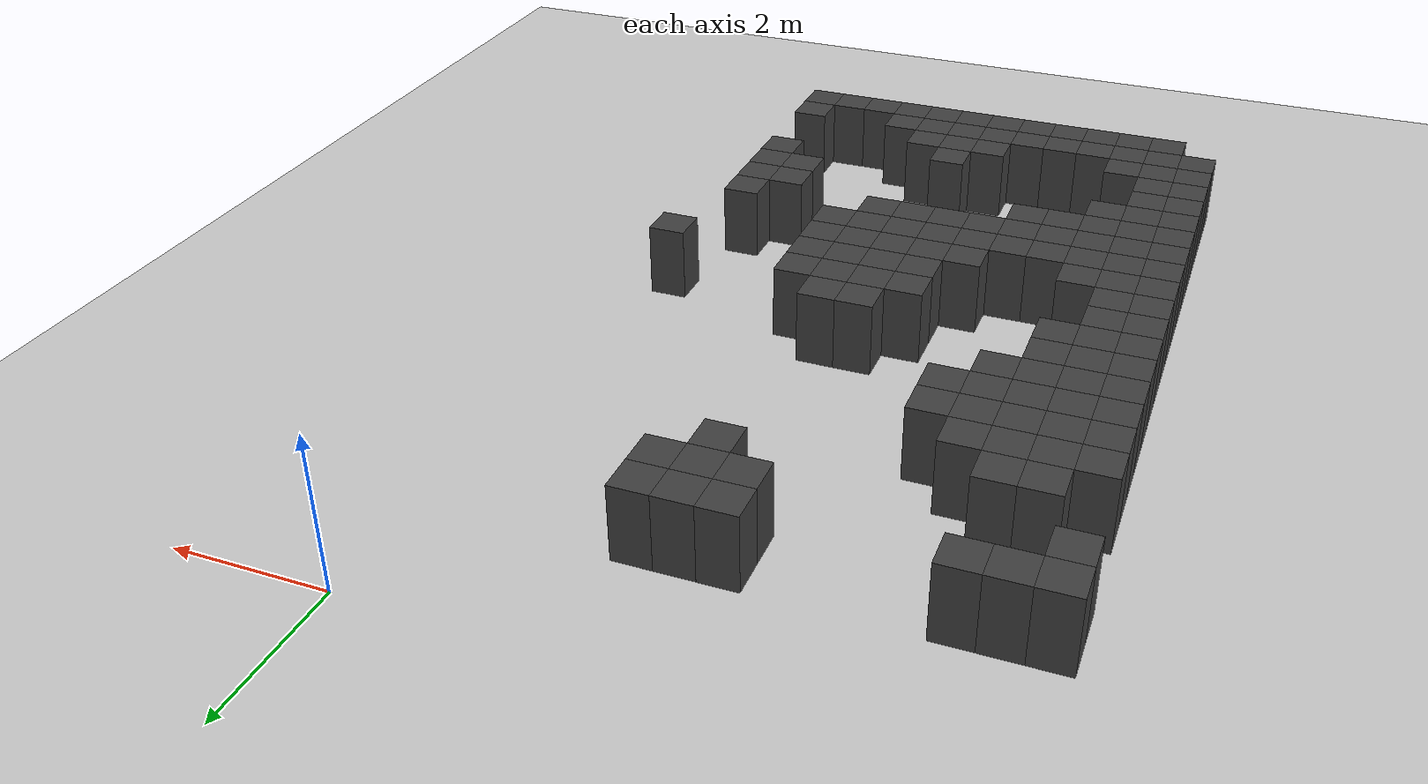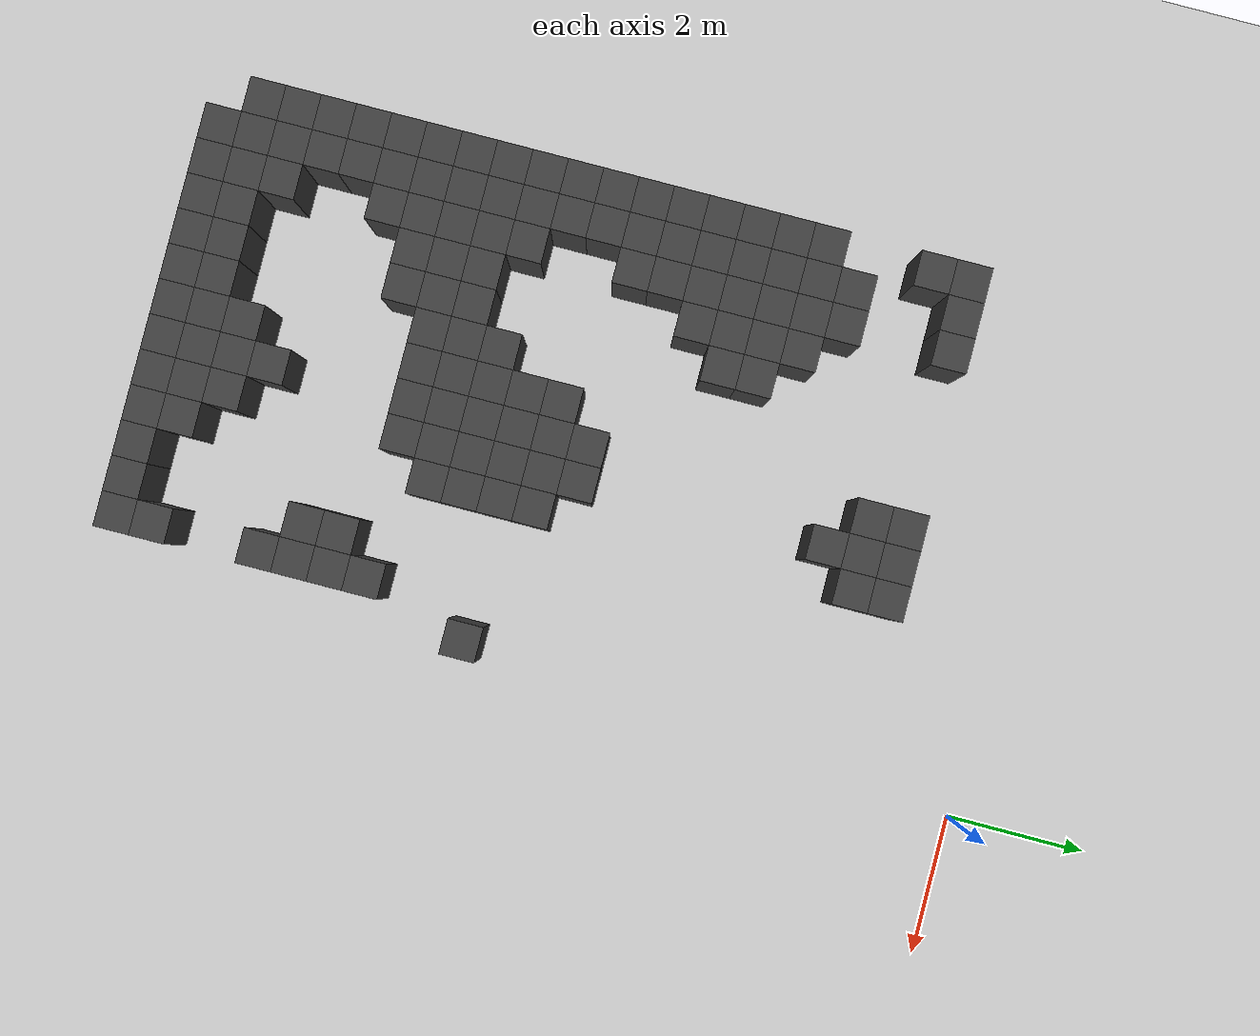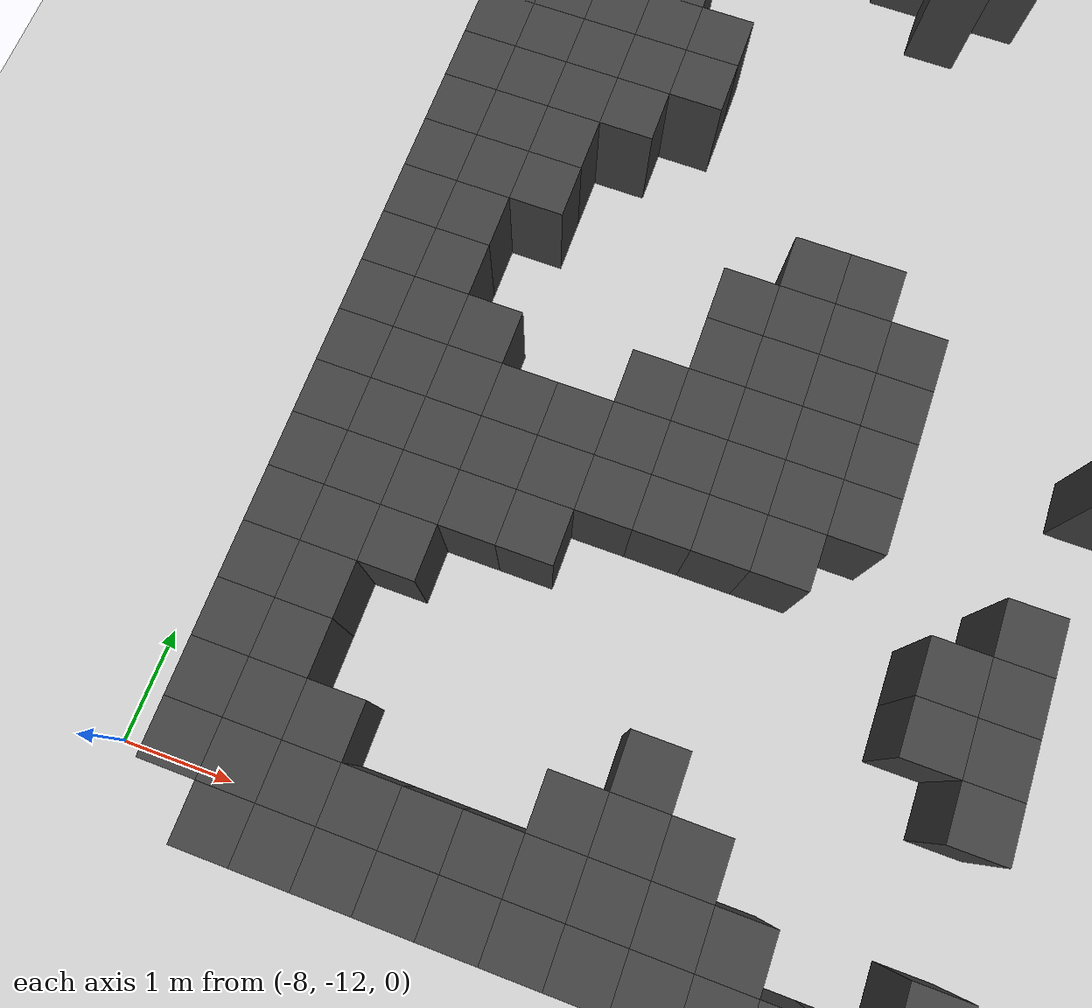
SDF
<sdf version="1.7">
 <world name="map_9713">
  <model name="ground_plane">
   <static>true</static>
   <link name="link">
    <collision name="collision">
     <geometry><plane><normal>0 0 1</normal><size>200 200</size></plane></geometry>
    </collision>
    <visual name="visual">
     <geometry><plane><normal>0 0 1</normal><size>200 200</size></plane></geometry>
     <material><ambient>0.8 0.8 0.8 1</ambient><diffuse>0.8 0.8 0.8 1</diffuse></material>
    </visual>
   </link>
  </model>
  <model name="maze_environment">
   <static>true</static>
   <link name="wall_519">
    <pose>-7.250 -1.750 0.500 0 0 0</pose>
    <collision name="col"><geometry><box><size>0.5 0.5 1.0</size></box></geometry></collision>
    <visual name="vis">
     <geometry><box><size>0.5 0.5 1.0</size></box></geometry>
     <material><ambient>0.15 0.15 0.15 1</ambient><diffuse>0.25 0.25 0.25 1</diffuse></material>
    </visual>
   </link>
   <link name="wall_520">
    <pose>-6.750 -1.750 0.500 0 0 0</pose>
    <collision name="col"><geometry><box><size>0.5 0.5 1.0</size></box></geometry></collision>
    <visual name="vis">
     <geometry><box><size>0.5 0.5 1.0</size></box></geometry>
     <material><ambient>0.15 0.15 0.15 1</ambient><diffuse>0.25 0.25 0.25 1</diffuse></material>
    </visual>
   </link>
   <link name="wall_521">
    <pose>-6.250 -1.750 0.500 0 0 0</pose>
    <collision name="col"><geometry><box><size>0.5 0.5 1.0</size></box></geometry></collision>
    <visual name="vis">
     <geometry><box><size>0.5 0.5 1.0</size></box></geometry>
     <material><ambient>0.15 0.15 0.15 1</ambient><diffuse>0.25 0.25 0.25 1</diffuse></material>
    </visual>
   </link>
   <link name="wall_522">
    <pose>-3.750 -1.750 0.500 0 0 0</pose>
    <collision name="col"><geometry><box><size>0.5 0.5 1.0</size></box></geometry></collision>
    <visual name="vis">
     <geometry><box><size>0.5 0.5 1.0</size></box></geometry>
     <material><ambient>0.15 0.15 0.15 1</ambient><diffuse>0.25 0.25 0.25 1</diffuse></material>
    </visual>
   </link>
   <link name="wall_523">
    <pose>-3.250 -1.750 0.500 0 0 0</pose>
    <collision name="col"><geometry><box><size>0.5 0.5 1.0</size></box></geometry></collision>
    <visual name="vis">
     <geometry><box><size>0.5 0.5 1.0</size></box></geometry>
     <material><ambient>0.15 0.15 0.15 1</ambient><diffuse>0.25 0.25 0.25 1</diffuse></material>
    </visual>
   </link>
   <link name="wall_524">
    <pose>-2.750 -1.750 0.500 0 0 0</pose>
    <collision name="col"><geometry><box><size>0.5 0.5 1.0</size></box></geometry></collision>
    <visual name="vis">
     <geometry><box><size>0.5 0.5 1.0</size></box></geometry>
     <material><ambient>0.15 0.15 0.15 1</ambient><diffuse>0.25 0.25 0.25 1</diffuse></material>
    </visual>
   </link>
   <link name="wall_540">
    <pose>-7.250 -2.250 0.500 0 0 0</pose>
    <collision name="col"><geometry><box><size>0.5 0.5 1.0</size></box></geometry></collision>
    <visual name="vis">
     <geometry><box><size>0.5 0.5 1.0</size></box></geometry>
     <material><ambient>0.15 0.15 0.15 1</ambient><diffuse>0.25 0.25 0.25 1</diffuse></material>
    </visual>
   </link>
   <link name="wall_541">
    <pose>-3.750 -2.250 0.500 0 0 0</pose>
    <collision name="col"><geometry><box><size>0.5 0.5 1.0</size></box></geometry></collision>
    <visual name="vis">
     <geometry><box><size>0.5 0.5 1.0</size></box></geometry>
     <material><ambient>0.15 0.15 0.15 1</ambient><diffuse>0.25 0.25 0.25 1</diffuse></material>
    </visual>
   </link>
   <link name="wall_542">
    <pose>-3.250 -2.250 0.500 0 0 0</pose>
    <collision name="col"><geometry><box><size>0.5 0.5 1.0</size></box></geometry></collision>
    <visual name="vis">
     <geometry><box><size>0.5 0.5 1.0</size></box></geometry>
     <material><ambient>0.15 0.15 0.15 1</ambient><diffuse>0.25 0.25 0.25 1</diffuse></material>
    </visual>
   </link>
   <link name="wall_543">
    <pose>-2.750 -2.250 0.500 0 0 0</pose>
    <collision name="col"><geometry><box><size>0.5 0.5 1.0</size></box></geometry></collision>
    <visual name="vis">
     <geometry><box><size>0.5 0.5 1.0</size></box></geometry>
     <material><ambient>0.15 0.15 0.15 1</ambient><diffuse>0.25 0.25 0.25 1</diffuse></material>
    </visual>
   </link>
   <link name="wall_561">
    <pose>-3.250 -2.750 0.500 0 0 0</pose>
    <collision name="col"><geometry><box><size>0.5 0.5 1.0</size></box></geometry></collision>
    <visual name="vis">
     <geometry><box><size>0.5 0.5 1.0</size></box></geometry>
     <material><ambient>0.15 0.15 0.15 1</ambient><diffuse>0.25 0.25 0.25 1</diffuse></material>
    </visual>
   </link>
   <link name="wall_583">
    <pose>-6.750 -3.250 0.500 0 0 0</pose>
    <collision name="col"><geometry><box><size>0.5 0.5 1.0</size></box></geometry></collision>
    <visual name="vis">
     <geometry><box><size>0.5 0.5 1.0</size></box></geometry>
     <material><ambient>0.15 0.15 0.15 1</ambient><diffuse>0.25 0.25 0.25 1</diffuse></material>
    </visual>
   </link>
   <link name="wall_584">
    <pose>-6.250 -3.250 0.500 0 0 0</pose>
    <collision name="col"><geometry><box><size>0.5 0.5 1.0</size></box></geometry></collision>
    <visual name="vis">
     <geometry><box><size>0.5 0.5 1.0</size></box></geometry>
     <material><ambient>0.15 0.15 0.15 1</ambient><diffuse>0.25 0.25 0.25 1</diffuse></material>
    </visual>
   </link>
   <link name="wall_605">
    <pose>-7.250 -3.750 0.500 0 0 0</pose>
    <collision name="col"><geometry><box><size>0.5 0.5 1.0</size></box></geometry></collision>
    <visual name="vis">
     <geometry><box><size>0.5 0.5 1.0</size></box></geometry>
     <material><ambient>0.15 0.15 0.15 1</ambient><diffuse>0.25 0.25 0.25 1</diffuse></material>
    </visual>
   </link>
   <link name="wall_606">
    <pose>-6.750 -3.750 0.500 0 0 0</pose>
    <collision name="col"><geometry><box><size>0.5 0.5 1.0</size></box></geometry></collision>
    <visual name="vis">
     <geometry><box><size>0.5 0.5 1.0</size></box></geometry>
     <material><ambient>0.15 0.15 0.15 1</ambient><diffuse>0.25 0.25 0.25 1</diffuse></material>
    </visual>
   </link>
   <link name="wall_607">
    <pose>-6.250 -3.750 0.500 0 0 0</pose>
    <collision name="col"><geometry><box><size>0.5 0.5 1.0</size></box></geometry></collision>
    <visual name="vis">
     <geometry><box><size>0.5 0.5 1.0</size></box></geometry>
     <material><ambient>0.15 0.15 0.15 1</ambient><diffuse>0.25 0.25 0.25 1</diffuse></material>
    </visual>
   </link>
   <link name="wall_608">
    <pose>-5.750 -3.750 0.500 0 0 0</pose>
    <collision name="col"><geometry><box><size>0.5 0.5 1.0</size></box></geometry></collision>
    <visual name="vis">
     <geometry><box><size>0.5 0.5 1.0</size></box></geometry>
     <material><ambient>0.15 0.15 0.15 1</ambient><diffuse>0.25 0.25 0.25 1</diffuse></material>
    </visual>
   </link>
   <link name="wall_625">
    <pose>-7.250 -4.250 0.500 0 0 0</pose>
    <collision name="col"><geometry><box><size>0.5 0.5 1.0</size></box></geometry></collision>
    <visual name="vis">
     <geometry><box><size>0.5 0.5 1.0</size></box></geometry>
     <material><ambient>0.15 0.15 0.15 1</ambient><diffuse>0.25 0.25 0.25 1</diffuse></material>
    </visual>
   </link>
   <link name="wall_626">
    <pose>-6.750 -4.250 0.500 0 0 0</pose>
    <collision name="col"><geometry><box><size>0.5 0.5 1.0</size></box></geometry></collision>
    <visual name="vis">
     <geometry><box><size>0.5 0.5 1.0</size></box></geometry>
     <material><ambient>0.15 0.15 0.15 1</ambient><diffuse>0.25 0.25 0.25 1</diffuse></material>
    </visual>
   </link>
   <link name="wall_627">
    <pose>-6.250 -4.250 0.500 0 0 0</pose>
    <collision name="col"><geometry><box><size>0.5 0.5 1.0</size></box></geometry></collision>
    <visual name="vis">
     <geometry><box><size>0.5 0.5 1.0</size></box></geometry>
     <material><ambient>0.15 0.15 0.15 1</ambient><diffuse>0.25 0.25 0.25 1</diffuse></material>
    </visual>
   </link>
   <link name="wall_628">
    <pose>-5.750 -4.250 0.500 0 0 0</pose>
    <collision name="col"><geometry><box><size>0.5 0.5 1.0</size></box></geometry></collision>
    <visual name="vis">
     <geometry><box><size>0.5 0.5 1.0</size></box></geometry>
     <material><ambient>0.15 0.15 0.15 1</ambient><diffuse>0.25 0.25 0.25 1</diffuse></material>
    </visual>
   </link>
   <link name="wall_629">
    <pose>-5.250 -4.250 0.500 0 0 0</pose>
    <collision name="col"><geometry><box><size>0.5 0.5 1.0</size></box></geometry></collision>
    <visual name="vis">
     <geometry><box><size>0.5 0.5 1.0</size></box></geometry>
     <material><ambient>0.15 0.15 0.15 1</ambient><diffuse>0.25 0.25 0.25 1</diffuse></material>
    </visual>
   </link>
   <link name="wall_641">
    <pose>-7.250 -4.750 0.500 0 0 0</pose>
    <collision name="col"><geometry><box><size>0.5 0.5 1.0</size></box></geometry></collision>
    <visual name="vis">
     <geometry><box><size>0.5 0.5 1.0</size></box></geometry>
     <material><ambient>0.15 0.15 0.15 1</ambient><diffuse>0.25 0.25 0.25 1</diffuse></material>
    </visual>
   </link>
   <link name="wall_642">
    <pose>-6.750 -4.750 0.500 0 0 0</pose>
    <collision name="col"><geometry><box><size>0.5 0.5 1.0</size></box></geometry></collision>
    <visual name="vis">
     <geometry><box><size>0.5 0.5 1.0</size></box></geometry>
     <material><ambient>0.15 0.15 0.15 1</ambient><diffuse>0.25 0.25 0.25 1</diffuse></material>
    </visual>
   </link>
   <link name="wall_643">
    <pose>-6.250 -4.750 0.500 0 0 0</pose>
    <collision name="col"><geometry><box><size>0.5 0.5 1.0</size></box></geometry></collision>
    <visual name="vis">
     <geometry><box><size>0.5 0.5 1.0</size></box></geometry>
     <material><ambient>0.15 0.15 0.15 1</ambient><diffuse>0.25 0.25 0.25 1</diffuse></material>
    </visual>
   </link>
   <link name="wall_644">
    <pose>-5.750 -4.750 0.500 0 0 0</pose>
    <collision name="col"><geometry><box><size>0.5 0.5 1.0</size></box></geometry></collision>
    <visual name="vis">
     <geometry><box><size>0.5 0.5 1.0</size></box></geometry>
     <material><ambient>0.15 0.15 0.15 1</ambient><diffuse>0.25 0.25 0.25 1</diffuse></material>
    </visual>
   </link>
   <link name="wall_645">
    <pose>-5.250 -4.750 0.500 0 0 0</pose>
    <collision name="col"><geometry><box><size>0.5 0.5 1.0</size></box></geometry></collision>
    <visual name="vis">
     <geometry><box><size>0.5 0.5 1.0</size></box></geometry>
     <material><ambient>0.15 0.15 0.15 1</ambient><diffuse>0.25 0.25 0.25 1</diffuse></material>
    </visual>
   </link>
   <link name="wall_656">
    <pose>-7.250 -5.250 0.500 0 0 0</pose>
    <collision name="col"><geometry><box><size>0.5 0.5 1.0</size></box></geometry></collision>
    <visual name="vis">
     <geometry><box><size>0.5 0.5 1.0</size></box></geometry>
     <material><ambient>0.15 0.15 0.15 1</ambient><diffuse>0.25 0.25 0.25 1</diffuse></material>
    </visual>
   </link>
   <link name="wall_657">
    <pose>-6.750 -5.250 0.500 0 0 0</pose>
    <collision name="col"><geometry><box><size>0.5 0.5 1.0</size></box></geometry></collision>
    <visual name="vis">
     <geometry><box><size>0.5 0.5 1.0</size></box></geometry>
     <material><ambient>0.15 0.15 0.15 1</ambient><diffuse>0.25 0.25 0.25 1</diffuse></material>
    </visual>
   </link>
   <link name="wall_658">
    <pose>-6.250 -5.250 0.500 0 0 0</pose>
    <collision name="col"><geometry><box><size>0.5 0.5 1.0</size></box></geometry></collision>
    <visual name="vis">
     <geometry><box><size>0.5 0.5 1.0</size></box></geometry>
     <material><ambient>0.15 0.15 0.15 1</ambient><diffuse>0.25 0.25 0.25 1</diffuse></material>
    </visual>
   </link>
   <link name="wall_659">
    <pose>-5.750 -5.250 0.500 0 0 0</pose>
    <collision name="col"><geometry><box><size>0.5 0.5 1.0</size></box></geometry></collision>
    <visual name="vis">
     <geometry><box><size>0.5 0.5 1.0</size></box></geometry>
     <material><ambient>0.15 0.15 0.15 1</ambient><diffuse>0.25 0.25 0.25 1</diffuse></material>
    </visual>
   </link>
   <link name="wall_672">
    <pose>-7.250 -5.750 0.500 0 0 0</pose>
    <collision name="col"><geometry><box><size>0.5 0.5 1.0</size></box></geometry></collision>
    <visual name="vis">
     <geometry><box><size>0.5 0.5 1.0</size></box></geometry>
     <material><ambient>0.15 0.15 0.15 1</ambient><diffuse>0.25 0.25 0.25 1</diffuse></material>
    </visual>
   </link>
   <link name="wall_673">
    <pose>-6.750 -5.750 0.500 0 0 0</pose>
    <collision name="col"><geometry><box><size>0.5 0.5 1.0</size></box></geometry></collision>
    <visual name="vis">
     <geometry><box><size>0.5 0.5 1.0</size></box></geometry>
     <material><ambient>0.15 0.15 0.15 1</ambient><diffuse>0.25 0.25 0.25 1</diffuse></material>
    </visual>
   </link>
   <link name="wall_674">
    <pose>-6.250 -5.750 0.500 0 0 0</pose>
    <collision name="col"><geometry><box><size>0.5 0.5 1.0</size></box></geometry></collision>
    <visual name="vis">
     <geometry><box><size>0.5 0.5 1.0</size></box></geometry>
     <material><ambient>0.15 0.15 0.15 1</ambient><diffuse>0.25 0.25 0.25 1</diffuse></material>
    </visual>
   </link>
   <link name="wall_692">
    <pose>-7.250 -6.250 0.500 0 0 0</pose>
    <collision name="col"><geometry><box><size>0.5 0.5 1.0</size></box></geometry></collision>
    <visual name="vis">
     <geometry><box><size>0.5 0.5 1.0</size></box></geometry>
     <material><ambient>0.15 0.15 0.15 1</ambient><diffuse>0.25 0.25 0.25 1</diffuse></material>
    </visual>
   </link>
   <link name="wall_693">
    <pose>-6.750 -6.250 0.500 0 0 0</pose>
    <collision name="col"><geometry><box><size>0.5 0.5 1.0</size></box></geometry></collision>
    <visual name="vis">
     <geometry><box><size>0.5 0.5 1.0</size></box></geometry>
     <material><ambient>0.15 0.15 0.15 1</ambient><diffuse>0.25 0.25 0.25 1</diffuse></material>
    </visual>
   </link>
   <link name="wall_694">
    <pose>-6.250 -6.250 0.500 0 0 0</pose>
    <collision name="col"><geometry><box><size>0.5 0.5 1.0</size></box></geometry></collision>
    <visual name="vis">
     <geometry><box><size>0.5 0.5 1.0</size></box></geometry>
     <material><ambient>0.15 0.15 0.15 1</ambient><diffuse>0.25 0.25 0.25 1</diffuse></material>
    </visual>
   </link>
   <link name="wall_695">
    <pose>-3.750 -6.250 0.500 0 0 0</pose>
    <collision name="col"><geometry><box><size>0.5 0.5 1.0</size></box></geometry></collision>
    <visual name="vis">
     <geometry><box><size>0.5 0.5 1.0</size></box></geometry>
     <material><ambient>0.15 0.15 0.15 1</ambient><diffuse>0.25 0.25 0.25 1</diffuse></material>
    </visual>
   </link>
   <link name="wall_696">
    <pose>-3.250 -6.250 0.500 0 0 0</pose>
    <collision name="col"><geometry><box><size>0.5 0.5 1.0</size></box></geometry></collision>
    <visual name="vis">
     <geometry><box><size>0.5 0.5 1.0</size></box></geometry>
     <material><ambient>0.15 0.15 0.15 1</ambient><diffuse>0.25 0.25 0.25 1</diffuse></material>
    </visual>
   </link>
   <link name="wall_716">
    <pose>-7.250 -6.750 0.500 0 0 0</pose>
    <collision name="col"><geometry><box><size>0.5 0.5 1.0</size></box></geometry></collision>
    <visual name="vis">
     <geometry><box><size>0.5 0.5 1.0</size></box></geometry>
     <material><ambient>0.15 0.15 0.15 1</ambient><diffuse>0.25 0.25 0.25 1</diffuse></material>
    </visual>
   </link>
   <link name="wall_717">
    <pose>-6.750 -6.750 0.500 0 0 0</pose>
    <collision name="col"><geometry><box><size>0.5 0.5 1.0</size></box></geometry></collision>
    <visual name="vis">
     <geometry><box><size>0.5 0.5 1.0</size></box></geometry>
     <material><ambient>0.15 0.15 0.15 1</ambient><diffuse>0.25 0.25 0.25 1</diffuse></material>
    </visual>
   </link>
   <link name="wall_718">
    <pose>-4.250 -6.750 0.500 0 0 0</pose>
    <collision name="col"><geometry><box><size>0.5 0.5 1.0</size></box></geometry></collision>
    <visual name="vis">
     <geometry><box><size>0.5 0.5 1.0</size></box></geometry>
     <material><ambient>0.15 0.15 0.15 1</ambient><diffuse>0.25 0.25 0.25 1</diffuse></material>
    </visual>
   </link>
   <link name="wall_719">
    <pose>-3.750 -6.750 0.500 0 0 0</pose>
    <collision name="col"><geometry><box><size>0.5 0.5 1.0</size></box></geometry></collision>
    <visual name="vis">
     <geometry><box><size>0.5 0.5 1.0</size></box></geometry>
     <material><ambient>0.15 0.15 0.15 1</ambient><diffuse>0.25 0.25 0.25 1</diffuse></material>
    </visual>
   </link>
   <link name="wall_720">
    <pose>-3.250 -6.750 0.500 0 0 0</pose>
    <collision name="col"><geometry><box><size>0.5 0.5 1.0</size></box></geometry></collision>
    <visual name="vis">
     <geometry><box><size>0.5 0.5 1.0</size></box></geometry>
     <material><ambient>0.15 0.15 0.15 1</ambient><diffuse>0.25 0.25 0.25 1</diffuse></material>
    </visual>
   </link>
   <link name="wall_721">
    <pose>-2.750 -6.750 0.500 0 0 0</pose>
    <collision name="col"><geometry><box><size>0.5 0.5 1.0</size></box></geometry></collision>
    <visual name="vis">
     <geometry><box><size>0.5 0.5 1.0</size></box></geometry>
     <material><ambient>0.15 0.15 0.15 1</ambient><diffuse>0.25 0.25 0.25 1</diffuse></material>
    </visual>
   </link>
   <link name="wall_747">
    <pose>-7.250 -7.250 0.500 0 0 0</pose>
    <collision name="col"><geometry><box><size>0.5 0.5 1.0</size></box></geometry></collision>
    <visual name="vis">
     <geometry><box><size>0.5 0.5 1.0</size></box></geometry>
     <material><ambient>0.15 0.15 0.15 1</ambient><diffuse>0.25 0.25 0.25 1</diffuse></material>
    </visual>
   </link>
   <link name="wall_748">
    <pose>-6.750 -7.250 0.500 0 0 0</pose>
    <collision name="col"><geometry><box><size>0.5 0.5 1.0</size></box></geometry></collision>
    <visual name="vis">
     <geometry><box><size>0.5 0.5 1.0</size></box></geometry>
     <material><ambient>0.15 0.15 0.15 1</ambient><diffuse>0.25 0.25 0.25 1</diffuse></material>
    </visual>
   </link>
   <link name="wall_749">
    <pose>-4.250 -7.250 0.500 0 0 0</pose>
    <collision name="col"><geometry><box><size>0.5 0.5 1.0</size></box></geometry></collision>
    <visual name="vis">
     <geometry><box><size>0.5 0.5 1.0</size></box></geometry>
     <material><ambient>0.15 0.15 0.15 1</ambient><diffuse>0.25 0.25 0.25 1</diffuse></material>
    </visual>
   </link>
   <link name="wall_750">
    <pose>-3.750 -7.250 0.500 0 0 0</pose>
    <collision name="col"><geometry><box><size>0.5 0.5 1.0</size></box></geometry></collision>
    <visual name="vis">
     <geometry><box><size>0.5 0.5 1.0</size></box></geometry>
     <material><ambient>0.15 0.15 0.15 1</ambient><diffuse>0.25 0.25 0.25 1</diffuse></material>
    </visual>
   </link>
   <link name="wall_751">
    <pose>-3.250 -7.250 0.500 0 0 0</pose>
    <collision name="col"><geometry><box><size>0.5 0.5 1.0</size></box></geometry></collision>
    <visual name="vis">
     <geometry><box><size>0.5 0.5 1.0</size></box></geometry>
     <material><ambient>0.15 0.15 0.15 1</ambient><diffuse>0.25 0.25 0.25 1</diffuse></material>
    </visual>
   </link>
   <link name="wall_752">
    <pose>-2.750 -7.250 0.500 0 0 0</pose>
    <collision name="col"><geometry><box><size>0.5 0.5 1.0</size></box></geometry></collision>
    <visual name="vis">
     <geometry><box><size>0.5 0.5 1.0</size></box></geometry>
     <material><ambient>0.15 0.15 0.15 1</ambient><diffuse>0.25 0.25 0.25 1</diffuse></material>
    </visual>
   </link>
   <link name="wall_753">
    <pose>-0.750 -7.250 0.500 0 0 0</pose>
    <collision name="col"><geometry><box><size>0.5 0.5 1.0</size></box></geometry></collision>
    <visual name="vis">
     <geometry><box><size>0.5 0.5 1.0</size></box></geometry>
     <material><ambient>0.15 0.15 0.15 1</ambient><diffuse>0.25 0.25 0.25 1</diffuse></material>
    </visual>
   </link>
   <link name="wall_779">
    <pose>-7.250 -7.750 0.500 0 0 0</pose>
    <collision name="col"><geometry><box><size>0.5 0.5 1.0</size></box></geometry></collision>
    <visual name="vis">
     <geometry><box><size>0.5 0.5 1.0</size></box></geometry>
     <material><ambient>0.15 0.15 0.15 1</ambient><diffuse>0.25 0.25 0.25 1</diffuse></material>
    </visual>
   </link>
   <link name="wall_780">
    <pose>-6.750 -7.750 0.500 0 0 0</pose>
    <collision name="col"><geometry><box><size>0.5 0.5 1.0</size></box></geometry></collision>
    <visual name="vis">
     <geometry><box><size>0.5 0.5 1.0</size></box></geometry>
     <material><ambient>0.15 0.15 0.15 1</ambient><diffuse>0.25 0.25 0.25 1</diffuse></material>
    </visual>
   </link>
   <link name="wall_781">
    <pose>-6.250 -7.750 0.500 0 0 0</pose>
    <collision name="col"><geometry><box><size>0.5 0.5 1.0</size></box></geometry></collision>
    <visual name="vis">
     <geometry><box><size>0.5 0.5 1.0</size></box></geometry>
     <material><ambient>0.15 0.15 0.15 1</ambient><diffuse>0.25 0.25 0.25 1</diffuse></material>
    </visual>
   </link>
   <link name="wall_782">
    <pose>-4.750 -7.750 0.500 0 0 0</pose>
    <collision name="col"><geometry><box><size>0.5 0.5 1.0</size></box></geometry></collision>
    <visual name="vis">
     <geometry><box><size>0.5 0.5 1.0</size></box></geometry>
     <material><ambient>0.15 0.15 0.15 1</ambient><diffuse>0.25 0.25 0.25 1</diffuse></material>
    </visual>
   </link>
   <link name="wall_783">
    <pose>-4.250 -7.750 0.500 0 0 0</pose>
    <collision name="col"><geometry><box><size>0.5 0.5 1.0</size></box></geometry></collision>
    <visual name="vis">
     <geometry><box><size>0.5 0.5 1.0</size></box></geometry>
     <material><ambient>0.15 0.15 0.15 1</ambient><diffuse>0.25 0.25 0.25 1</diffuse></material>
    </visual>
   </link>
   <link name="wall_784">
    <pose>-3.750 -7.750 0.500 0 0 0</pose>
    <collision name="col"><geometry><box><size>0.5 0.5 1.0</size></box></geometry></collision>
    <visual name="vis">
     <geometry><box><size>0.5 0.5 1.0</size></box></geometry>
     <material><ambient>0.15 0.15 0.15 1</ambient><diffuse>0.25 0.25 0.25 1</diffuse></material>
    </visual>
   </link>
   <link name="wall_785">
    <pose>-3.250 -7.750 0.500 0 0 0</pose>
    <collision name="col"><geometry><box><size>0.5 0.5 1.0</size></box></geometry></collision>
    <visual name="vis">
     <geometry><box><size>0.5 0.5 1.0</size></box></geometry>
     <material><ambient>0.15 0.15 0.15 1</ambient><diffuse>0.25 0.25 0.25 1</diffuse></material>
    </visual>
   </link>
   <link name="wall_786">
    <pose>-2.750 -7.750 0.500 0 0 0</pose>
    <collision name="col"><geometry><box><size>0.5 0.5 1.0</size></box></geometry></collision>
    <visual name="vis">
     <geometry><box><size>0.5 0.5 1.0</size></box></geometry>
     <material><ambient>0.15 0.15 0.15 1</ambient><diffuse>0.25 0.25 0.25 1</diffuse></material>
    </visual>
   </link>
   <link name="wall_806">
    <pose>-7.250 -8.250 0.500 0 0 0</pose>
    <collision name="col"><geometry><box><size>0.5 0.5 1.0</size></box></geometry></collision>
    <visual name="vis">
     <geometry><box><size>0.5 0.5 1.0</size></box></geometry>
     <material><ambient>0.15 0.15 0.15 1</ambient><diffuse>0.25 0.25 0.25 1</diffuse></material>
    </visual>
   </link>
   <link name="wall_807">
    <pose>-6.750 -8.250 0.500 0 0 0</pose>
    <collision name="col"><geometry><box><size>0.5 0.5 1.0</size></box></geometry></collision>
    <visual name="vis">
     <geometry><box><size>0.5 0.5 1.0</size></box></geometry>
     <material><ambient>0.15 0.15 0.15 1</ambient><diffuse>0.25 0.25 0.25 1</diffuse></material>
    </visual>
   </link>
   <link name="wall_808">
    <pose>-6.250 -8.250 0.500 0 0 0</pose>
    <collision name="col"><geometry><box><size>0.5 0.5 1.0</size></box></geometry></collision>
    <visual name="vis">
     <geometry><box><size>0.5 0.5 1.0</size></box></geometry>
     <material><ambient>0.15 0.15 0.15 1</ambient><diffuse>0.25 0.25 0.25 1</diffuse></material>
    </visual>
   </link>
   <link name="wall_809">
    <pose>-5.750 -8.250 0.500 0 0 0</pose>
    <collision name="col"><geometry><box><size>0.5 0.5 1.0</size></box></geometry></collision>
    <visual name="vis">
     <geometry><box><size>0.5 0.5 1.0</size></box></geometry>
     <material><ambient>0.15 0.15 0.15 1</ambient><diffuse>0.25 0.25 0.25 1</diffuse></material>
    </visual>
   </link>
   <link name="wall_810">
    <pose>-5.250 -8.250 0.500 0 0 0</pose>
    <collision name="col"><geometry><box><size>0.5 0.5 1.0</size></box></geometry></collision>
    <visual name="vis">
     <geometry><box><size>0.5 0.5 1.0</size></box></geometry>
     <material><ambient>0.15 0.15 0.15 1</ambient><diffuse>0.25 0.25 0.25 1</diffuse></material>
    </visual>
   </link>
   <link name="wall_811">
    <pose>-4.750 -8.250 0.500 0 0 0</pose>
    <collision name="col"><geometry><box><size>0.5 0.5 1.0</size></box></geometry></collision>
    <visual name="vis">
     <geometry><box><size>0.5 0.5 1.0</size></box></geometry>
     <material><ambient>0.15 0.15 0.15 1</ambient><diffuse>0.25 0.25 0.25 1</diffuse></material>
    </visual>
   </link>
   <link name="wall_812">
    <pose>-4.250 -8.250 0.500 0 0 0</pose>
    <collision name="col"><geometry><box><size>0.5 0.5 1.0</size></box></geometry></collision>
    <visual name="vis">
     <geometry><box><size>0.5 0.5 1.0</size></box></geometry>
     <material><ambient>0.15 0.15 0.15 1</ambient><diffuse>0.25 0.25 0.25 1</diffuse></material>
    </visual>
   </link>
   <link name="wall_813">
    <pose>-3.750 -8.250 0.500 0 0 0</pose>
    <collision name="col"><geometry><box><size>0.5 0.5 1.0</size></box></geometry></collision>
    <visual name="vis">
     <geometry><box><size>0.5 0.5 1.0</size></box></geometry>
     <material><ambient>0.15 0.15 0.15 1</ambient><diffuse>0.25 0.25 0.25 1</diffuse></material>
    </visual>
   </link>
   <link name="wall_814">
    <pose>-3.250 -8.250 0.500 0 0 0</pose>
    <collision name="col"><geometry><box><size>0.5 0.5 1.0</size></box></geometry></collision>
    <visual name="vis">
     <geometry><box><size>0.5 0.5 1.0</size></box></geometry>
     <material><ambient>0.15 0.15 0.15 1</ambient><diffuse>0.25 0.25 0.25 1</diffuse></material>
    </visual>
   </link>
   <link name="wall_815">
    <pose>-2.750 -8.250 0.500 0 0 0</pose>
    <collision name="col"><geometry><box><size>0.5 0.5 1.0</size></box></geometry></collision>
    <visual name="vis">
     <geometry><box><size>0.5 0.5 1.0</size></box></geometry>
     <material><ambient>0.15 0.15 0.15 1</ambient><diffuse>0.25 0.25 0.25 1</diffuse></material>
    </visual>
   </link>
   <link name="wall_827">
    <pose>-7.250 -8.750 0.500 0 0 0</pose>
    <collision name="col"><geometry><box><size>0.5 0.5 1.0</size></box></geometry></collision>
    <visual name="vis">
     <geometry><box><size>0.5 0.5 1.0</size></box></geometry>
     <material><ambient>0.15 0.15 0.15 1</ambient><diffuse>0.25 0.25 0.25 1</diffuse></material>
    </visual>
   </link>
   <link name="wall_828">
    <pose>-6.750 -8.750 0.500 0 0 0</pose>
    <collision name="col"><geometry><box><size>0.5 0.5 1.0</size></box></geometry></collision>
    <visual name="vis">
     <geometry><box><size>0.5 0.5 1.0</size></box></geometry>
     <material><ambient>0.15 0.15 0.15 1</ambient><diffuse>0.25 0.25 0.25 1</diffuse></material>
    </visual>
   </link>
   <link name="wall_829">
    <pose>-6.250 -8.750 0.500 0 0 0</pose>
    <collision name="col"><geometry><box><size>0.5 0.5 1.0</size></box></geometry></collision>
    <visual name="vis">
     <geometry><box><size>0.5 0.5 1.0</size></box></geometry>
     <material><ambient>0.15 0.15 0.15 1</ambient><diffuse>0.25 0.25 0.25 1</diffuse></material>
    </visual>
   </link>
   <link name="wall_830">
    <pose>-5.750 -8.750 0.500 0 0 0</pose>
    <collision name="col"><geometry><box><size>0.5 0.5 1.0</size></box></geometry></collision>
    <visual name="vis">
     <geometry><box><size>0.5 0.5 1.0</size></box></geometry>
     <material><ambient>0.15 0.15 0.15 1</ambient><diffuse>0.25 0.25 0.25 1</diffuse></material>
    </visual>
   </link>
   <link name="wall_831">
    <pose>-5.250 -8.750 0.500 0 0 0</pose>
    <collision name="col"><geometry><box><size>0.5 0.5 1.0</size></box></geometry></collision>
    <visual name="vis">
     <geometry><box><size>0.5 0.5 1.0</size></box></geometry>
     <material><ambient>0.15 0.15 0.15 1</ambient><diffuse>0.25 0.25 0.25 1</diffuse></material>
    </visual>
   </link>
   <link name="wall_832">
    <pose>-4.750 -8.750 0.500 0 0 0</pose>
    <collision name="col"><geometry><box><size>0.5 0.5 1.0</size></box></geometry></collision>
    <visual name="vis">
     <geometry><box><size>0.5 0.5 1.0</size></box></geometry>
     <material><ambient>0.15 0.15 0.15 1</ambient><diffuse>0.25 0.25 0.25 1</diffuse></material>
    </visual>
   </link>
   <link name="wall_833">
    <pose>-4.250 -8.750 0.500 0 0 0</pose>
    <collision name="col"><geometry><box><size>0.5 0.5 1.0</size></box></geometry></collision>
    <visual name="vis">
     <geometry><box><size>0.5 0.5 1.0</size></box></geometry>
     <material><ambient>0.15 0.15 0.15 1</ambient><diffuse>0.25 0.25 0.25 1</diffuse></material>
    </visual>
   </link>
   <link name="wall_834">
    <pose>-3.750 -8.750 0.500 0 0 0</pose>
    <collision name="col"><geometry><box><size>0.5 0.5 1.0</size></box></geometry></collision>
    <visual name="vis">
     <geometry><box><size>0.5 0.5 1.0</size></box></geometry>
     <material><ambient>0.15 0.15 0.15 1</ambient><diffuse>0.25 0.25 0.25 1</diffuse></material>
    </visual>
   </link>
   <link name="wall_835">
    <pose>-3.250 -8.750 0.500 0 0 0</pose>
    <collision name="col"><geometry><box><size>0.5 0.5 1.0</size></box></geometry></collision>
    <visual name="vis">
     <geometry><box><size>0.5 0.5 1.0</size></box></geometry>
     <material><ambient>0.15 0.15 0.15 1</ambient><diffuse>0.25 0.25 0.25 1</diffuse></material>
    </visual>
   </link>
   <link name="wall_836">
    <pose>-1.250 -8.750 0.500 0 0 0</pose>
    <collision name="col"><geometry><box><size>0.5 0.5 1.0</size></box></geometry></collision>
    <visual name="vis">
     <geometry><box><size>0.5 0.5 1.0</size></box></geometry>
     <material><ambient>0.15 0.15 0.15 1</ambient><diffuse>0.25 0.25 0.25 1</diffuse></material>
    </visual>
   </link>
   <link name="wall_847">
    <pose>-7.250 -9.250 0.500 0 0 0</pose>
    <collision name="col"><geometry><box><size>0.5 0.5 1.0</size></box></geometry></collision>
    <visual name="vis">
     <geometry><box><size>0.5 0.5 1.0</size></box></geometry>
     <material><ambient>0.15 0.15 0.15 1</ambient><diffuse>0.25 0.25 0.25 1</diffuse></material>
    </visual>
   </link>
   <link name="wall_848">
    <pose>-6.750 -9.250 0.500 0 0 0</pose>
    <collision name="col"><geometry><box><size>0.5 0.5 1.0</size></box></geometry></collision>
    <visual name="vis">
     <geometry><box><size>0.5 0.5 1.0</size></box></geometry>
     <material><ambient>0.15 0.15 0.15 1</ambient><diffuse>0.25 0.25 0.25 1</diffuse></material>
    </visual>
   </link>
   <link name="wall_849">
    <pose>-6.250 -9.250 0.500 0 0 0</pose>
    <collision name="col"><geometry><box><size>0.5 0.5 1.0</size></box></geometry></collision>
    <visual name="vis">
     <geometry><box><size>0.5 0.5 1.0</size></box></geometry>
     <material><ambient>0.15 0.15 0.15 1</ambient><diffuse>0.25 0.25 0.25 1</diffuse></material>
    </visual>
   </link>
   <link name="wall_850">
    <pose>-5.750 -9.250 0.500 0 0 0</pose>
    <collision name="col"><geometry><box><size>0.5 0.5 1.0</size></box></geometry></collision>
    <visual name="vis">
     <geometry><box><size>0.5 0.5 1.0</size></box></geometry>
     <material><ambient>0.15 0.15 0.15 1</ambient><diffuse>0.25 0.25 0.25 1</diffuse></material>
    </visual>
   </link>
   <link name="wall_851">
    <pose>-5.250 -9.250 0.500 0 0 0</pose>
    <collision name="col"><geometry><box><size>0.5 0.5 1.0</size></box></geometry></collision>
    <visual name="vis">
     <geometry><box><size>0.5 0.5 1.0</size></box></geometry>
     <material><ambient>0.15 0.15 0.15 1</ambient><diffuse>0.25 0.25 0.25 1</diffuse></material>
    </visual>
   </link>
   <link name="wall_852">
    <pose>-1.750 -9.250 0.500 0 0 0</pose>
    <collision name="col"><geometry><box><size>0.5 0.5 1.0</size></box></geometry></collision>
    <visual name="vis">
     <geometry><box><size>0.5 0.5 1.0</size></box></geometry>
     <material><ambient>0.15 0.15 0.15 1</ambient><diffuse>0.25 0.25 0.25 1</diffuse></material>
    </visual>
   </link>
   <link name="wall_853">
    <pose>-1.250 -9.250 0.500 0 0 0</pose>
    <collision name="col"><geometry><box><size>0.5 0.5 1.0</size></box></geometry></collision>
    <visual name="vis">
     <geometry><box><size>0.5 0.5 1.0</size></box></geometry>
     <material><ambient>0.15 0.15 0.15 1</ambient><diffuse>0.25 0.25 0.25 1</diffuse></material>
    </visual>
   </link>
   <link name="wall_865">
    <pose>-7.250 -9.750 0.500 0 0 0</pose>
    <collision name="col"><geometry><box><size>0.5 0.5 1.0</size></box></geometry></collision>
    <visual name="vis">
     <geometry><box><size>0.5 0.5 1.0</size></box></geometry>
     <material><ambient>0.15 0.15 0.15 1</ambient><diffuse>0.25 0.25 0.25 1</diffuse></material>
    </visual>
   </link>
   <link name="wall_866">
    <pose>-6.750 -9.750 0.500 0 0 0</pose>
    <collision name="col"><geometry><box><size>0.5 0.5 1.0</size></box></geometry></collision>
    <visual name="vis">
     <geometry><box><size>0.5 0.5 1.0</size></box></geometry>
     <material><ambient>0.15 0.15 0.15 1</ambient><diffuse>0.25 0.25 0.25 1</diffuse></material>
    </visual>
   </link>
   <link name="wall_867">
    <pose>-6.250 -9.750 0.500 0 0 0</pose>
    <collision name="col"><geometry><box><size>0.5 0.5 1.0</size></box></geometry></collision>
    <visual name="vis">
     <geometry><box><size>0.5 0.5 1.0</size></box></geometry>
     <material><ambient>0.15 0.15 0.15 1</ambient><diffuse>0.25 0.25 0.25 1</diffuse></material>
    </visual>
   </link>
   <link name="wall_868">
    <pose>-1.750 -9.750 0.500 0 0 0</pose>
    <collision name="col"><geometry><box><size>0.5 0.5 1.0</size></box></geometry></collision>
    <visual name="vis">
     <geometry><box><size>0.5 0.5 1.0</size></box></geometry>
     <material><ambient>0.15 0.15 0.15 1</ambient><diffuse>0.25 0.25 0.25 1</diffuse></material>
    </visual>
   </link>
   <link name="wall_869">
    <pose>-1.250 -9.750 0.500 0 0 0</pose>
    <collision name="col"><geometry><box><size>0.5 0.5 1.0</size></box></geometry></collision>
    <visual name="vis">
     <geometry><box><size>0.5 0.5 1.0</size></box></geometry>
     <material><ambient>0.15 0.15 0.15 1</ambient><diffuse>0.25 0.25 0.25 1</diffuse></material>
    </visual>
   </link>
   <link name="wall_884">
    <pose>-7.250 -10.250 0.500 0 0 0</pose>
    <collision name="col"><geometry><box><size>0.5 0.5 1.0</size></box></geometry></collision>
    <visual name="vis">
     <geometry><box><size>0.5 0.5 1.0</size></box></geometry>
     <material><ambient>0.15 0.15 0.15 1</ambient><diffuse>0.25 0.25 0.25 1</diffuse></material>
    </visual>
   </link>
   <link name="wall_885">
    <pose>-6.750 -10.250 0.500 0 0 0</pose>
    <collision name="col"><geometry><box><size>0.5 0.5 1.0</size></box></geometry></collision>
    <visual name="vis">
     <geometry><box><size>0.5 0.5 1.0</size></box></geometry>
     <material><ambient>0.15 0.15 0.15 1</ambient><diffuse>0.25 0.25 0.25 1</diffuse></material>
    </visual>
   </link>
   <link name="wall_886">
    <pose>-1.250 -10.250 0.500 0 0 0</pose>
    <collision name="col"><geometry><box><size>0.5 0.5 1.0</size></box></geometry></collision>
    <visual name="vis">
     <geometry><box><size>0.5 0.5 1.0</size></box></geometry>
     <material><ambient>0.15 0.15 0.15 1</ambient><diffuse>0.25 0.25 0.25 1</diffuse></material>
    </visual>
   </link>
   <link name="wall_900">
    <pose>-7.250 -10.750 0.500 0 0 0</pose>
    <collision name="col"><geometry><box><size>0.5 0.5 1.0</size></box></geometry></collision>
    <visual name="vis">
     <geometry><box><size>0.5 0.5 1.0</size></box></geometry>
     <material><ambient>0.15 0.15 0.15 1</ambient><diffuse>0.25 0.25 0.25 1</diffuse></material>
    </visual>
   </link>
   <link name="wall_901">
    <pose>-6.750 -10.750 0.500 0 0 0</pose>
    <collision name="col"><geometry><box><size>0.5 0.5 1.0</size></box></geometry></collision>
    <visual name="vis">
     <geometry><box><size>0.5 0.5 1.0</size></box></geometry>
     <material><ambient>0.15 0.15 0.15 1</ambient><diffuse>0.25 0.25 0.25 1</diffuse></material>
    </visual>
   </link>
   <link name="wall_902">
    <pose>-3.750 -10.750 0.500 0 0 0</pose>
    <collision name="col"><geometry><box><size>0.5 0.5 1.0</size></box></geometry></collision>
    <visual name="vis">
     <geometry><box><size>0.5 0.5 1.0</size></box></geometry>
     <material><ambient>0.15 0.15 0.15 1</ambient><diffuse>0.25 0.25 0.25 1</diffuse></material>
    </visual>
   </link>
   <link name="wall_915">
    <pose>-7.250 -11.250 0.500 0 0 0</pose>
    <collision name="col"><geometry><box><size>0.5 0.5 1.0</size></box></geometry></collision>
    <visual name="vis">
     <geometry><box><size>0.5 0.5 1.0</size></box></geometry>
     <material><ambient>0.15 0.15 0.15 1</ambient><diffuse>0.25 0.25 0.25 1</diffuse></material>
    </visual>
   </link>
   <link name="wall_916">
    <pose>-6.750 -11.250 0.500 0 0 0</pose>
    <collision name="col"><geometry><box><size>0.5 0.5 1.0</size></box></geometry></collision>
    <visual name="vis">
     <geometry><box><size>0.5 0.5 1.0</size></box></geometry>
     <material><ambient>0.15 0.15 0.15 1</ambient><diffuse>0.25 0.25 0.25 1</diffuse></material>
    </visual>
   </link>
   <link name="wall_917">
    <pose>-6.250 -11.250 0.500 0 0 0</pose>
    <collision name="col"><geometry><box><size>0.5 0.5 1.0</size></box></geometry></collision>
    <visual name="vis">
     <geometry><box><size>0.5 0.5 1.0</size></box></geometry>
     <material><ambient>0.15 0.15 0.15 1</ambient><diffuse>0.25 0.25 0.25 1</diffuse></material>
    </visual>
   </link>
   <link name="wall_918">
    <pose>-4.250 -11.250 0.500 0 0 0</pose>
    <collision name="col"><geometry><box><size>0.5 0.5 1.0</size></box></geometry></collision>
    <visual name="vis">
     <geometry><box><size>0.5 0.5 1.0</size></box></geometry>
     <material><ambient>0.15 0.15 0.15 1</ambient><diffuse>0.25 0.25 0.25 1</diffuse></material>
    </visual>
   </link>
   <link name="wall_919">
    <pose>-3.750 -11.250 0.500 0 0 0</pose>
    <collision name="col"><geometry><box><size>0.5 0.5 1.0</size></box></geometry></collision>
    <visual name="vis">
     <geometry><box><size>0.5 0.5 1.0</size></box></geometry>
     <material><ambient>0.15 0.15 0.15 1</ambient><diffuse>0.25 0.25 0.25 1</diffuse></material>
    </visual>
   </link>
   <link name="wall_920">
    <pose>-3.250 -11.250 0.500 0 0 0</pose>
    <collision name="col"><geometry><box><size>0.5 0.5 1.0</size></box></geometry></collision>
    <visual name="vis">
     <geometry><box><size>0.5 0.5 1.0</size></box></geometry>
     <material><ambient>0.15 0.15 0.15 1</ambient><diffuse>0.25 0.25 0.25 1</diffuse></material>
    </visual>
   </link>
   <link name="wall_937">
    <pose>-7.250 -11.750 0.500 0 0 0</pose>
    <collision name="col"><geometry><box><size>0.5 0.5 1.0</size></box></geometry></collision>
    <visual name="vis">
     <geometry><box><size>0.5 0.5 1.0</size></box></geometry>
     <material><ambient>0.15 0.15 0.15 1</ambient><diffuse>0.25 0.25 0.25 1</diffuse></material>
    </visual>
   </link>
   <link name="wall_938">
    <pose>-6.750 -11.750 0.500 0 0 0</pose>
    <collision name="col"><geometry><box><size>0.5 0.5 1.0</size></box></geometry></collision>
    <visual name="vis">
     <geometry><box><size>0.5 0.5 1.0</size></box></geometry>
     <material><ambient>0.15 0.15 0.15 1</ambient><diffuse>0.25 0.25 0.25 1</diffuse></material>
    </visual>
   </link>
   <link name="wall_939">
    <pose>-6.250 -11.750 0.500 0 0 0</pose>
    <collision name="col"><geometry><box><size>0.5 0.5 1.0</size></box></geometry></collision>
    <visual name="vis">
     <geometry><box><size>0.5 0.5 1.0</size></box></geometry>
     <material><ambient>0.15 0.15 0.15 1</ambient><diffuse>0.25 0.25 0.25 1</diffuse></material>
    </visual>
   </link>
   <link name="wall_940">
    <pose>-5.750 -11.750 0.500 0 0 0</pose>
    <collision name="col"><geometry><box><size>0.5 0.5 1.0</size></box></geometry></collision>
    <visual name="vis">
     <geometry><box><size>0.5 0.5 1.0</size></box></geometry>
     <material><ambient>0.15 0.15 0.15 1</ambient><diffuse>0.25 0.25 0.25 1</diffuse></material>
    </visual>
   </link>
   <link name="wall_941">
    <pose>-5.250 -11.750 0.500 0 0 0</pose>
    <collision name="col"><geometry><box><size>0.5 0.5 1.0</size></box></geometry></collision>
    <visual name="vis">
     <geometry><box><size>0.5 0.5 1.0</size></box></geometry>
     <material><ambient>0.15 0.15 0.15 1</ambient><diffuse>0.25 0.25 0.25 1</diffuse></material>
    </visual>
   </link>
   <link name="wall_942">
    <pose>-4.750 -11.750 0.500 0 0 0</pose>
    <collision name="col"><geometry><box><size>0.5 0.5 1.0</size></box></geometry></collision>
    <visual name="vis">
     <geometry><box><size>0.5 0.5 1.0</size></box></geometry>
     <material><ambient>0.15 0.15 0.15 1</ambient><diffuse>0.25 0.25 0.25 1</diffuse></material>
    </visual>
   </link>
   <link name="wall_943">
    <pose>-4.250 -11.750 0.500 0 0 0</pose>
    <collision name="col"><geometry><box><size>0.5 0.5 1.0</size></box></geometry></collision>
    <visual name="vis">
     <geometry><box><size>0.5 0.5 1.0</size></box></geometry>
     <material><ambient>0.15 0.15 0.15 1</ambient><diffuse>0.25 0.25 0.25 1</diffuse></material>
    </visual>
   </link>
   <link name="wall_944">
    <pose>-3.750 -11.750 0.500 0 0 0</pose>
    <collision name="col"><geometry><box><size>0.5 0.5 1.0</size></box></geometry></collision>
    <visual name="vis">
     <geometry><box><size>0.5 0.5 1.0</size></box></geometry>
     <material><ambient>0.15 0.15 0.15 1</ambient><diffuse>0.25 0.25 0.25 1</diffuse></material>
    </visual>
   </link>
   <link name="wall_945">
    <pose>-3.250 -11.750 0.500 0 0 0</pose>
    <collision name="col"><geometry><box><size>0.5 0.5 1.0</size></box></geometry></collision>
    <visual name="vis">
     <geometry><box><size>0.5 0.5 1.0</size></box></geometry>
     <material><ambient>0.15 0.15 0.15 1</ambient><diffuse>0.25 0.25 0.25 1</diffuse></material>
    </visual>
   </link>
   <link name="wall_946">
    <pose>-2.750 -11.750 0.500 0 0 0</pose>
    <collision name="col"><geometry><box><size>0.5 0.5 1.0</size></box></geometry></collision>
    <visual name="vis">
     <geometry><box><size>0.5 0.5 1.0</size></box></geometry>
     <material><ambient>0.15 0.15 0.15 1</ambient><diffuse>0.25 0.25 0.25 1</diffuse></material>
    </visual>
   </link>
   <link name="wall_947">
    <pose>-1.250 -11.750 0.500 0 0 0</pose>
    <collision name="col"><geometry><box><size>0.5 0.5 1.0</size></box></geometry></collision>
    <visual name="vis">
     <geometry><box><size>0.5 0.5 1.0</size></box></geometry>
     <material><ambient>0.15 0.15 0.15 1</ambient><diffuse>0.25 0.25 0.25 1</diffuse></material>
    </visual>
   </link>
   <link name="wall_978">
    <pose>-6.750 -12.250 0.500 0 0 0</pose>
    <collision name="col"><geometry><box><size>0.5 0.5 1.0</size></box></geometry></collision>
    <visual name="vis">
     <geometry><box><size>0.5 0.5 1.0</size></box></geometry>
     <material><ambient>0.15 0.15 0.15 1</ambient><diffuse>0.25 0.25 0.25 1</diffuse></material>
    </visual>
   </link>
   <link name="wall_979">
    <pose>-6.250 -12.250 0.500 0 0 0</pose>
    <collision name="col"><geometry><box><size>0.5 0.5 1.0</size></box></geometry></collision>
    <visual name="vis">
     <geometry><box><size>0.5 0.5 1.0</size></box></geometry>
     <material><ambient>0.15 0.15 0.15 1</ambient><diffuse>0.25 0.25 0.25 1</diffuse></material>
    </visual>
   </link>
   <link name="wall_980">
    <pose>-5.750 -12.250 0.500 0 0 0</pose>
    <collision name="col"><geometry><box><size>0.5 0.5 1.0</size></box></geometry></collision>
    <visual name="vis">
     <geometry><box><size>0.5 0.5 1.0</size></box></geometry>
     <material><ambient>0.15 0.15 0.15 1</ambient><diffuse>0.25 0.25 0.25 1</diffuse></material>
    </visual>
   </link>
   <link name="wall_981">
    <pose>-5.250 -12.250 0.500 0 0 0</pose>
    <collision name="col"><geometry><box><size>0.5 0.5 1.0</size></box></geometry></collision>
    <visual name="vis">
     <geometry><box><size>0.5 0.5 1.0</size></box></geometry>
     <material><ambient>0.15 0.15 0.15 1</ambient><diffuse>0.25 0.25 0.25 1</diffuse></material>
    </visual>
   </link>
   <link name="wall_982">
    <pose>-4.750 -12.250 0.500 0 0 0</pose>
    <collision name="col"><geometry><box><size>0.5 0.5 1.0</size></box></geometry></collision>
    <visual name="vis">
     <geometry><box><size>0.5 0.5 1.0</size></box></geometry>
     <material><ambient>0.15 0.15 0.15 1</ambient><diffuse>0.25 0.25 0.25 1</diffuse></material>
    </visual>
   </link>
   <link name="wall_983">
    <pose>-4.250 -12.250 0.500 0 0 0</pose>
    <collision name="col"><geometry><box><size>0.5 0.5 1.0</size></box></geometry></collision>
    <visual name="vis">
     <geometry><box><size>0.5 0.5 1.0</size></box></geometry>
     <material><ambient>0.15 0.15 0.15 1</ambient><diffuse>0.25 0.25 0.25 1</diffuse></material>
    </visual>
   </link>
   <link name="wall_984">
    <pose>-3.750 -12.250 0.500 0 0 0</pose>
    <collision name="col"><geometry><box><size>0.5 0.5 1.0</size></box></geometry></collision>
    <visual name="vis">
     <geometry><box><size>0.5 0.5 1.0</size></box></geometry>
     <material><ambient>0.15 0.15 0.15 1</ambient><diffuse>0.25 0.25 0.25 1</diffuse></material>
    </visual>
   </link>
   <link name="wall_985">
    <pose>-3.250 -12.250 0.500 0 0 0</pose>
    <collision name="col"><geometry><box><size>0.5 0.5 1.0</size></box></geometry></collision>
    <visual name="vis">
     <geometry><box><size>0.5 0.5 1.0</size></box></geometry>
     <material><ambient>0.15 0.15 0.15 1</ambient><diffuse>0.25 0.25 0.25 1</diffuse></material>
    </visual>
   </link>
   <link name="wall_986">
    <pose>-2.750 -12.250 0.500 0 0 0</pose>
    <collision name="col"><geometry><box><size>0.5 0.5 1.0</size></box></geometry></collision>
    <visual name="vis">
     <geometry><box><size>0.5 0.5 1.0</size></box></geometry>
     <material><ambient>0.15 0.15 0.15 1</ambient><diffuse>0.25 0.25 0.25 1</diffuse></material>
    </visual>
   </link>
   <link name="wall_987">
    <pose>-2.250 -12.250 0.500 0 0 0</pose>
    <collision name="col"><geometry><box><size>0.5 0.5 1.0</size></box></geometry></collision>
    <visual name="vis">
     <geometry><box><size>0.5 0.5 1.0</size></box></geometry>
     <material><ambient>0.15 0.15 0.15 1</ambient><diffuse>0.25 0.25 0.25 1</diffuse></material>
    </visual>
   </link>
   <link name="wall_988">
    <pose>-1.750 -12.250 0.500 0 0 0</pose>
    <collision name="col"><geometry><box><size>0.5 0.5 1.0</size></box></geometry></collision>
    <visual name="vis">
     <geometry><box><size>0.5 0.5 1.0</size></box></geometry>
     <material><ambient>0.15 0.15 0.15 1</ambient><diffuse>0.25 0.25 0.25 1</diffuse></material>
    </visual>
   </link>
   <link name="wall_989">
    <pose>-1.250 -12.250 0.500 0 0 0</pose>
    <collision name="col"><geometry><box><size>0.5 0.5 1.0</size></box></geometry></collision>
    <visual name="vis">
     <geometry><box><size>0.5 0.5 1.0</size></box></geometry>
     <material><ambient>0.15 0.15 0.15 1</ambient><diffuse>0.25 0.25 0.25 1</diffuse></material>
    </visual>
   </link>
  </model>
 </world>
</sdf>
